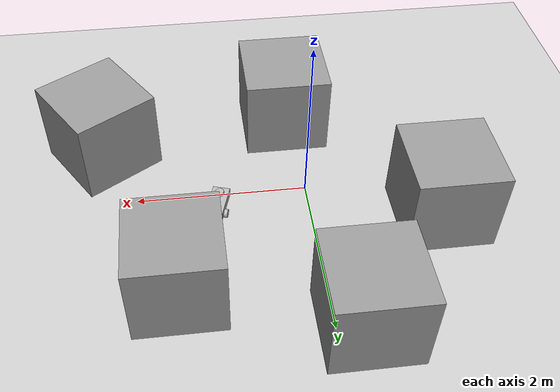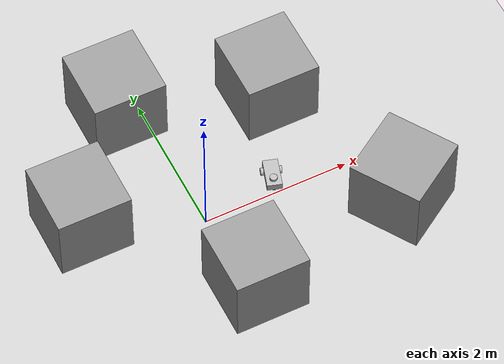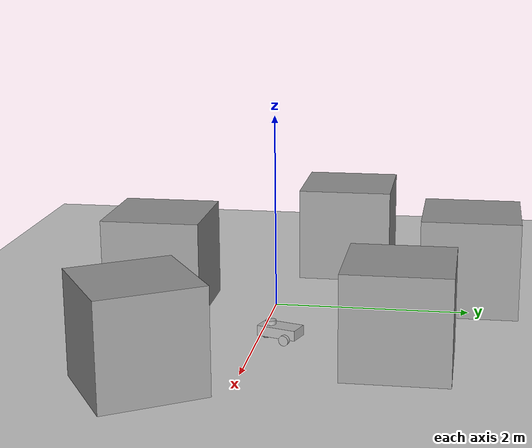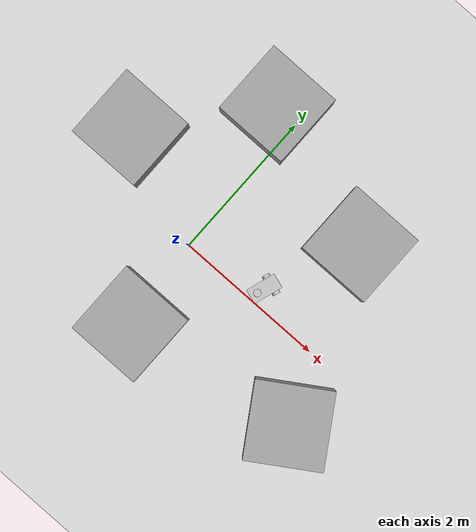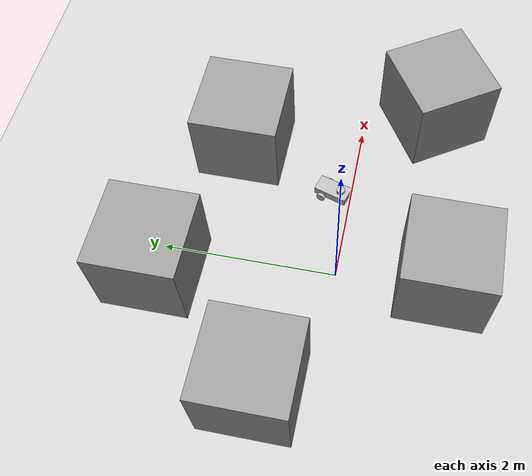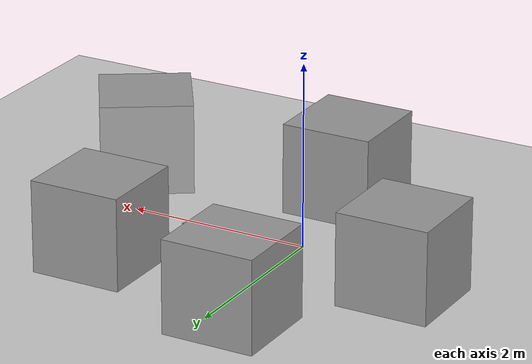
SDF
<sdf version="1.7">
 <world name="default">
  <light name="sun" type="directional">
   <pose>0 0 10 0 -0 0</pose>
   <diffuse>0.8 0.8 0.8 1</diffuse>
   <specular>0.2 0.2 0.2 1</specular>
   <attenuation>
    <range>1000</range>
    <constant>0.9</constant>
    <linear>0.01</linear>
    <quadratic>0.001</quadratic>
   </attenuation>
   <direction>-0.5 0.1 -0.9</direction>
   <spot><inner_angle>0</inner_angle><outer_angle>0</outer_angle><falloff>0</falloff></spot>
  </light>
  <model name="ground_plane">
   <static>1</static>
   <link name="link">
    <collision name="collision">
     <geometry><plane><normal>0 0 1</normal><size>100 100</size></plane></geometry>
     <surface>
      <contact><collide_bitmask>65535</collide_bitmask></contact>
      <friction><ode><mu>100</mu><mu2>50</mu2></ode></friction>
     </surface>
    </collision>
    <visual name="visual">
     <cast_shadows>0</cast_shadows>
     <geometry><plane><normal>0 0 1</normal><size>100 100</size></plane></geometry>
     <material>
      <script><uri>file://media/materials/scripts/gazebo.material</uri><name>Gazebo/Grey</name></script>
     </material>
    </visual>
   </link>
  </model>
  <gravity>0 0 -9.8</gravity>
  <magnetic_field>6e-06 2.3e-05 -4.2e-05</magnetic_field>
  <atmosphere type="adiabatic"/>
  <physics type="ode">
   <max_step_size>0.001</max_step_size>
   <real_time_factor>1</real_time_factor>
   <real_time_update_rate>1000</real_time_update_rate>
  </physics>
  <scene><ambient>0.4 0.4 0.4 1</ambient><background>0.7 0.7 0.7 1</background><shadows>1</shadows></scene>
  <spherical_coordinates>
   <surface_model>EARTH_WGS84</surface_model>
   <latitude_deg>0</latitude_deg>
   <longitude_deg>0</longitude_deg>
   <elevation>0</elevation>
   <heading_deg>0</heading_deg>
  </spherical_coordinates>
  <model name="licenta_robot">
   <link name="base_link">
    <inertial>
     <pose>0.010606 0 0.052727 0 -0 0</pose>
     <mass>1.65</mass>
     <inertia>
      <ixx>0.00697773</ixx>
      <ixy>0</ixy>
      <ixz>-0.000277273</ixz>
      <iyy>0.0151671</iyy>
      <iyz>0</iyz>
      <izz>0.0183644</izz>
     </inertia>
    </inertial>
    <collision name="base_link_collision">
     <pose>0 0 0.05 0 -0 0</pose>
     <geometry><box><size>0.4 0.2 0.1</size></box></geometry>
    </collision>
    <collision name="base_link_fixed_joint_lump__laser_frame_collision_1">
     <pose>0.1 0 0.12 0 -0 0</pose>
     <geometry><cylinder><length>0.04</length><radius>0.05</radius></cylinder></geometry>
    </collision>
    <collision name="base_link_fixed_joint_lump__roata_sprijin_collision_2">
     <pose>0.15 0 0 0 -0 0</pose>
     <geometry><sphere><radius>0.05</radius></sphere></geometry>
     <surface><friction><ode><mu>0.001</mu><mu2>0.001</mu2></ode></friction></surface>
    </collision>
    <visual name="base_link_visual">
     <pose>0 0 0.05 0 -0 0</pose>
     <geometry><box><size>0.4 0.2 0.1</size></box></geometry>
    </visual>
    <visual name="base_link_fixed_joint_lump__laser_frame_visual_1">
     <pose>0.1 0 0.12 0 -0 0</pose>
     <geometry><cylinder><length>0.04</length><radius>0.05</radius></cylinder></geometry>
    </visual>
    <visual name="base_link_fixed_joint_lump__roata_sprijin_visual_2">
     <pose>0.15 0 0 0 -0 0</pose>
     <geometry><sphere><radius>0.05</radius></sphere></geometry>
    </visual>
    <sensor name="laser" type="ray">
     <visualize>1</visualize>
     <update_rate>10</update_rate>
     <ray>
      <scan>
       <horizontal>
        <samples>360</samples>
        <min_angle>-3.14</min_angle>
        <max_angle>3.14</max_angle>
        <resolution>1</resolution>
       </horizontal>
       <vertical><samples>1</samples><min_angle>0</min_angle><max_angle>0</max_angle></vertical>
      </scan>
      <range><min>0.3</min><max>12</max></range>
     </ray>
     <plugin name="laser_controller" filename="libgazebo_ros_ray_sensor.so">
      <ros><argument>~/out:=scan</argument></ros>
      <output_type>sensor_msgs/LaserScan</output_type>
      <frame_name>laser_frame</frame_name>
     </plugin>
     <pose>0.1 0 0.12 0 -0 0</pose>
    </sensor>
   </link>
   <joint name="motor_dreapta" type="revolute">
    <pose relative_to="base_link">-0.1 -0.12 0 -1.5708 0 0</pose>
    <parent>base_link</parent>
    <child>roata_dreapta</child>
    <axis>
     <xyz>0 0 1</xyz>
     <limit><lower>-1e+16</lower><upper>1e+16</upper></limit>
     <dynamics><spring_reference>0</spring_reference><spring_stiffness>0</spring_stiffness></dynamics>
    </axis>
   </joint>
   <link name="roata_dreapta">
    <pose relative_to="motor_dreapta">0 0 0 0 -0 0</pose>
    <inertial>
     <mass>0.03</mass>
     <inertia>
      <ixx>2.275e-05</ixx>
      <ixy>0</ixy>
      <ixz>0</ixz>
      <iyy>2.275e-05</iyy>
      <iyz>0</iyz>
      <izz>3.75e-05</izz>
     </inertia>
    </inertial>
    <collision name="roata_dreapta_collision">
     <geometry><cylinder><length>0.01</length><radius>0.05</radius></cylinder></geometry>
     <surface><friction><ode><mu>1</mu><mu2>1</mu2></ode></friction></surface>
    </collision>
    <visual name="roata_dreapta_visual">
     <geometry><cylinder><length>0.04</length><radius>0.05</radius></cylinder></geometry>
    </visual>
   </link>
   <joint name="motor_stanga" type="revolute">
    <pose relative_to="base_link">-0.1 0.12 0 -1.5708 0 0</pose>
    <parent>base_link</parent>
    <child>roata_stanga</child>
    <axis>
     <xyz>0 0 1</xyz>
     <limit><lower>-1e+16</lower><upper>1e+16</upper></limit>
     <dynamics><spring_reference>0</spring_reference><spring_stiffness>0</spring_stiffness></dynamics>
    </axis>
   </joint>
   <link name="roata_stanga">
    <pose relative_to="motor_stanga">0 0 0 0 -0 0</pose>
    <inertial>
     <mass>0.03</mass>
     <inertia>
      <ixx>2.275e-05</ixx>
      <ixy>0</ixy>
      <ixz>0</ixz>
      <iyy>2.275e-05</iyy>
      <iyz>0</iyz>
      <izz>3.75e-05</izz>
     </inertia>
    </inertial>
    <collision name="roata_stanga_collision">
     <geometry><cylinder><length>0.01</length><radius>0.05</radius></cylinder></geometry>
     <surface><friction><ode><mu>1</mu><mu2>1</mu2></ode></friction></surface>
    </collision>
    <visual name="roata_stanga_visual">
     <geometry><cylinder><length>0.04</length><radius>0.05</radius></cylinder></geometry>
    </visual>
   </link>
   <static>0</static>
   <plugin name="diff_drive" filename="libgazebo_ros_diff_drive.so">
    <left_joint>motor_stanga</left_joint>
    <right_joint>motor_dreapta</right_joint>
    <wheel_separation>0.24</wheel_separation>
    <wheel_diameter>0.1</wheel_diameter>
    <max_wheel_torque>20</max_wheel_torque>
    <max_wheel_acceleration>1.0</max_wheel_acceleration>
    <publish_odom>1</publish_odom>
    <publish_odom_tf>1</publish_odom_tf>
    <publish_wheel_tf>1</publish_wheel_tf>
    <publish_wheel_joint_state>1</publish_wheel_joint_state>
    <update_rate>30</update_rate>
    <odometry_frame>odom</odometry_frame>
    <robot_base_frame>base_link</robot_base_frame>
   </plugin>
   <pose>1.05855 0.215844 0.05 0 0 -1.87742</pose>
  </model>
  <model name="unit_box">
   <pose>-0.315576 2.00308 0.499995 0 1e-05 0</pose>
   <link name="link">
    <inertial>
     <mass>1</mass>
     <inertia>
      <ixx>0.166667</ixx>
      <ixy>0</ixy>
      <ixz>0</ixz>
      <iyy>0.166667</iyy>
      <iyz>0</iyz>
      <izz>0.166667</izz>
     </inertia>
    </inertial>
    <collision name="collision"><geometry><box><size>1 1 1</size></box></geometry></collision>
    <visual name="visual">
     <geometry><box><size>1 1 1</size></box></geometry>
     <material>
      <script><name>Gazebo/Grey</name><uri>file://media/materials/scripts/gazebo.material</uri></script>
     </material>
    </visual>
   </link>
  </model>
  <model name="unit_box_0">
   <pose>-1.46315 0.6055 0.499995 -1e-05 -0 -0</pose>
   <link name="link">
    <inertial>
     <mass>1</mass>
     <inertia>
      <ixx>0.166667</ixx>
      <ixy>0</ixy>
      <ixz>0</ixz>
      <iyy>0.166667</iyy>
      <iyz>0</iyz>
      <izz>0.166667</izz>
     </inertia>
    </inertial>
    <collision name="collision"><geometry><box><size>1 1 1</size></box></geometry></collision>
    <visual name="visual">
     <geometry><box><size>1 1 1</size></box></geometry>
     <material>
      <script><name>Gazebo/Grey</name><uri>file://media/materials/scripts/gazebo.material</uri></script>
     </material>
    </visual>
   </link>
  </model>
  <model name="unit_box_1">
   <pose>0.113907 -1.18304 0.499995 0 1e-05 0</pose>
   <link name="link">
    <inertial>
     <mass>1</mass>
     <inertia>
      <ixx>0.166667</ixx>
      <ixy>0</ixy>
      <ixz>0</ixz>
      <iyy>0.166667</iyy>
      <iyz>0</iyz>
      <izz>0.166667</izz>
     </inertia>
    </inertial>
    <collision name="collision"><geometry><box><size>1 1 1</size></box></geometry></collision>
    <visual name="visual">
     <geometry><box><size>1 1 1</size></box></geometry>
     <material>
      <script><name>Gazebo/Grey</name><uri>file://media/materials/scripts/gazebo.material</uri></script>
     </material>
    </visual>
   </link>
  </model>
  <model name="unit_box_2">
   <pose>2.38118 -0.830258 0.499969 -1.3e-05 -6.2e-05 -1.00347</pose>
   <link name="link">
    <inertial>
     <mass>1</mass>
     <inertia>
      <ixx>0.166667</ixx>
      <ixy>0</ixy>
      <ixz>0</ixz>
      <iyy>0.166667</iyy>
      <iyz>0</iyz>
      <izz>0.166667</izz>
     </inertia>
    </inertial>
    <collision name="collision"><geometry><box><size>1 1 1</size></box></geometry></collision>
    <visual name="visual">
     <geometry><box><size>1 1 1</size></box></geometry>
     <material>
      <script><name>Gazebo/Grey</name><uri>file://media/materials/scripts/gazebo.material</uri></script>
     </material>
    </visual>
   </link>
  </model>
  <model name="unit_box_3">
   <pose>1.56646 1.39143 0.5 0 -0 0</pose>
   <link name="link">
    <inertial>
     <mass>1</mass>
     <inertia>
      <ixx>0.166667</ixx>
      <ixy>0</ixy>
      <ixz>0</ixz>
      <iyy>0.166667</iyy>
      <iyz>0</iyz>
      <izz>0.166667</izz>
     </inertia>
    </inertial>
    <collision name="collision"><geometry><box><size>1 1 1</size></box></geometry></collision>
    <visual name="visual">
     <geometry><box><size>1 1 1</size></box></geometry>
     <material>
      <script><name>Gazebo/Grey</name><uri>file://media/materials/scripts/gazebo.material</uri></script>
     </material>
    </visual>
   </link>
  </model>
 </world>
</sdf>
